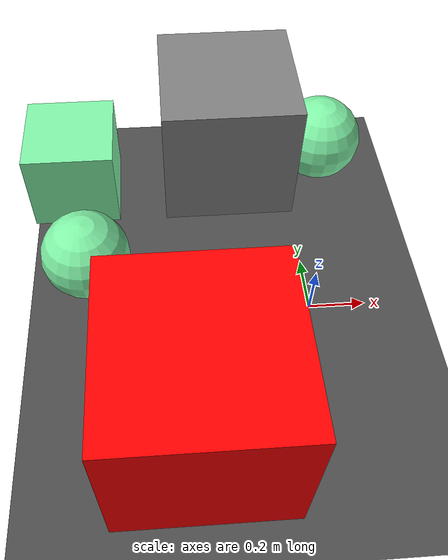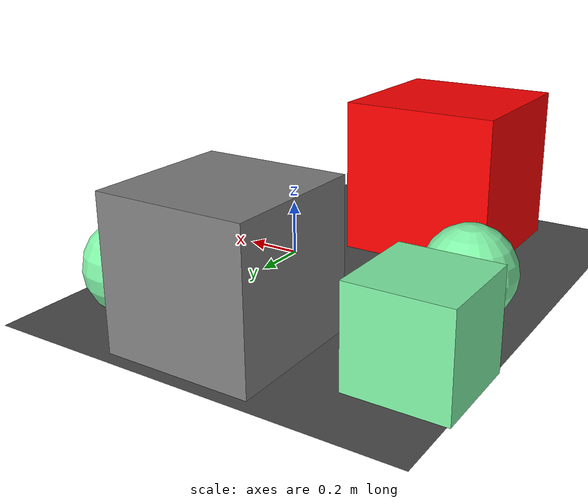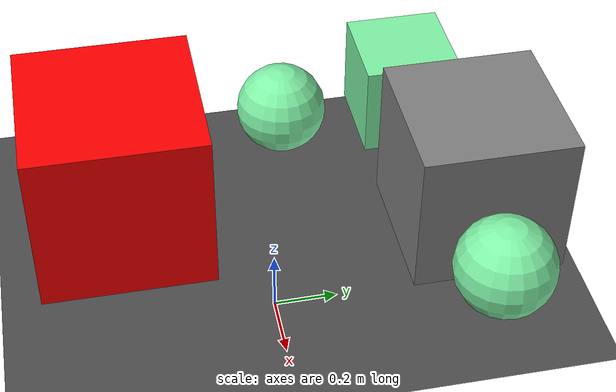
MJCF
<mujoco>
   <asset>
      <texture name="builtin_checker" builtin="checker" type="2d" rgb1="1 1 0" rgb2="0 0 1" width="200" height="200"/>
      <texture name="builtin_gradient" builtin="gradient" rgb1="0 .9 .3" rgb2="1 1 1" width="200" height="200"/>
      <texture name="builtin_flat" builtin="flat" rgb1="1 0 0" rgb2="1 0 0"  width="200" height="200"/>

      <material name="checker_mat" reflectance="0.9" texrepeat="3 3" texture="builtin_checker" texuniform="false" />
      <material name="gradient_mat" reflectance="1" texrepeat="1 1" texture="builtin_gradient" texuniform="true"/>
      <material name="flat_mat" reflectance="1" texrepeat="1 1" texture="builtin_flat" texuniform="true"/>
   </asset>

   <worldbody>
      <light diffuse=".9 .9 .9" pos="0 0 3" dir="0 0 -1"/>
     <geom type="plane" size="1 1 0.1" rgba="0.3 0.3 0.3 1"/>
<body pos="0.1356404387024125 0.7033886437589624 0.16596057244994636">
<joint type="free"/>
 <geom type="sphere" size="0.16596057244994636 0.16596057244994636 0.16596057244994636" material="gradient_mat" />
</body>
<body pos="-0.7867682420849212 0.1708165467541073 0.15711751753822717">
<joint type="free"/>
 <geom type="sphere" size="0.15711751753822717 0.15711751753822717 0.15711751753822717" material="gradient_mat" />
</body>
<body pos="-0.8456166288779018 0.6230435551003117 0.16550315238598146">
<joint type="free"/>
 <geom type="box" size="0.16550315238598146 0.16550315238598146 0.16550315238598146" material="gradient_mat" />
</body>
<body pos="-0.42212281713857475 -0.443174740035709 0.2846518968208003">
<joint type="free"/>
 <geom type="box" size="0.2846518968208003 0.2846518968208003 0.2846518968208003" material="flat_mat" />
</body>
<body pos="-0.243723037298471 0.7070820845310426 0.2518249066789132">
<joint type="free"/>
 <geom type="box" size="0.2518249066789132 0.2518249066789132 0.2518249066789132" material="checker_mat" />
</body><camera euler="60 0 180" fovy="60" name="camera_a" pos="0 -1.5 1"></camera>   </worldbody>
</mujoco>
